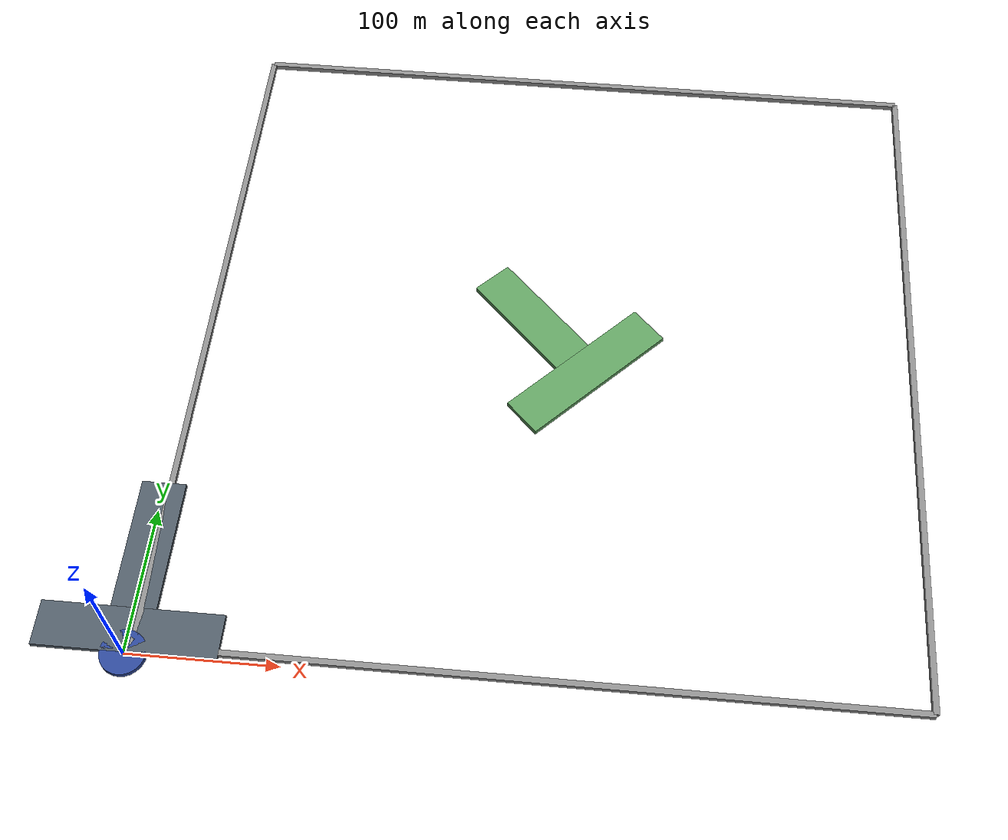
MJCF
<mujoco model="pusht">
  <option gravity="0 0 0" integrator="Euler" timestep="0.01"/>

  <visual>
    <global offheight="1024" offwidth="1024"/>
  </visual>

  <asset>
    <material name="flat" specular="0" shininess="0"/>
  </asset>

  <default>
    <!-- base friction 1 (walls keep this); agent & block override to 2 below to emulate pymunk's
         rigid-contact "grip" (MuJoCo soft contacts need higher mu to hold the block against the pusher) -->
    <geom friction="1 0.01 0.01" material="flat"/>
  </default>

  <worldbody>
    <!-- directional light from above; ambient+diffuse = 1.0 so rendered colors match geom rgba (pygame-like) -->
    <light name="sun" pos="256 256 2000" dir="0 0 -1" directional="true" diffuse="0.9 0.9 0.9" ambient="0.1 0.1 0.1" castshadow="false"/>

    <!-- white background plane (non-colliding) -->
    <geom name="background" type="plane" size="800 800 0.01" pos="256 256 -0.1" rgba="1 1 1 1" contype="0" conaffinity="0"/>

    <!-- goal zone: ghost T at goal pose (256,256,45deg), non-colliding, drawn beneath the block; rgb pre-scaled -> renders LightGreen(144,238,144) -->
    <body name="goal" pos="256 256 0" quat="0.92388 0 0 0.38268">
      <geom name="goal_head" type="box" size="60 15 3" pos="0 -30 -0.02" rgba="0.377 0.622 0.377 0.9" contype="0" conaffinity="0"/>
      <geom name="goal_stem" type="box" size="15 45 3" pos="0 30 -0.02" rgba="0.377 0.622 0.377 0.9" contype="0" conaffinity="0"/>
    </body>

    <geom name="wall_left"   type="box" size="2 251 3"   pos="5 256 0" rgba="0.55 0.55 0.55 1" friction="0 0 0"/>
    <geom name="wall_right"  type="box" size="2 251 3"   pos="507 256 0" rgba="0.55 0.55 0.55 1" friction="0 0 0"/>
    <geom name="wall_top"    type="box" size="251 2 3"   pos="256 5 0" rgba="0.55 0.55 0.55 1" friction="0 0 0"/>
    <geom name="wall_bottom" type="box" size="251 2 3"   pos="256 507 0" rgba="0.55 0.55 0.55 1" friction="0 0 0"/>

    <body name="agent" pos="0 0 0">
      <joint name="agent_x" type="slide" axis="1 0 0"/>
      <joint name="agent_y" type="slide" axis="0 1 0"/>
      <joint name="agent_theta" type="hinge" axis="0 0 1"/>
      <geom name="agent_geom" type="cylinder" size="15 3" pos="0 0 0" rgba="0.17 0.275 0.588 1" density="0.05" friction="2 0.02 0.02"/>
    </body>

    <body name="block" pos="0 0 0">
      <joint name="block_x" type="slide" axis="1 0 0" damping="5"/>
      <joint name="block_y" type="slide" axis="0 1 0" damping="5"/>
      <joint name="block_theta" type="hinge" axis="0 0 1" damping="5"/>
      <body name="block_com" pos="0 45 0">
        <geom name="block_head" type="box" size="60 15 3" pos="0 -30 0" rgba="0.31 0.355 0.4 1" density="2.65e-5" friction="2 0.02 0.02"/>
        <geom name="block_stem" type="box" size="15 45 3" pos="0 30 0" rgba="0.31 0.355 0.4 1" density="2.65e-5" friction="2 0.02 0.02"/>
      </body>
    </body>

    <!-- top-down camera; image rows follow -y_cam so caller flips vertically for pygame y-down convention -->
    <camera name="top" pos="256 256 618.05" xyaxes="1 0 0 0 1 0" fovy="45"/>
  </worldbody>
</mujoco>
